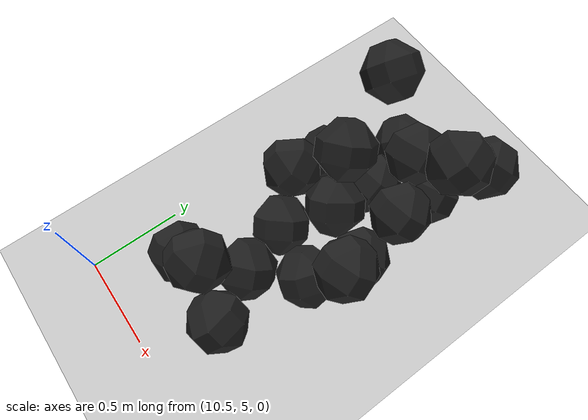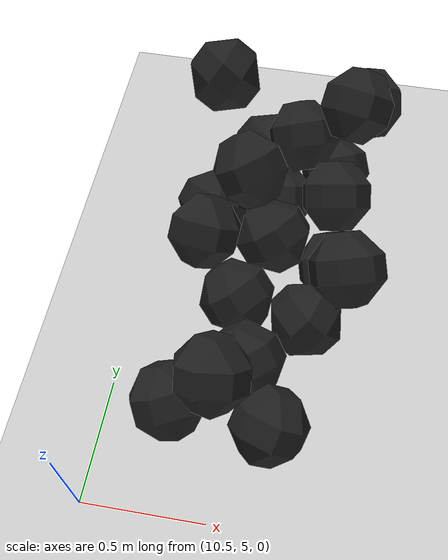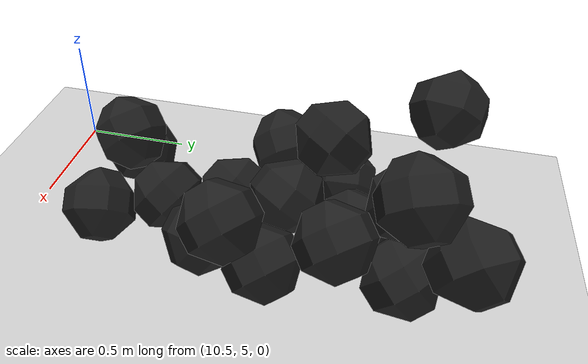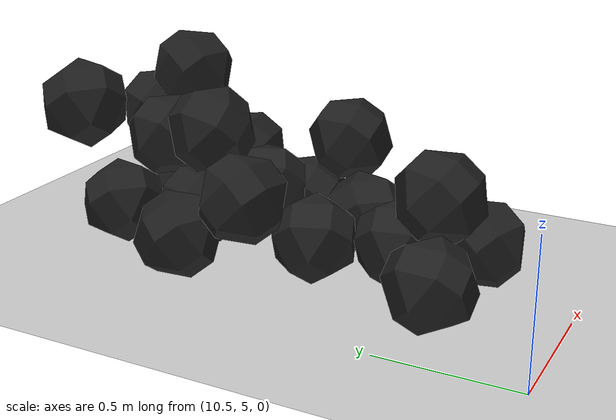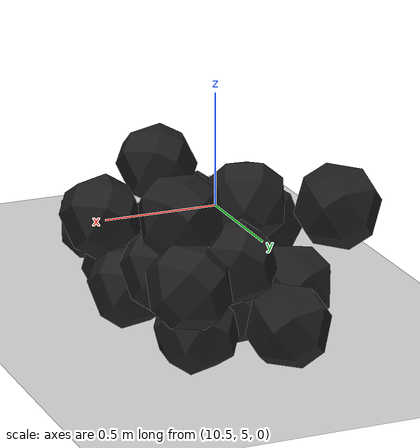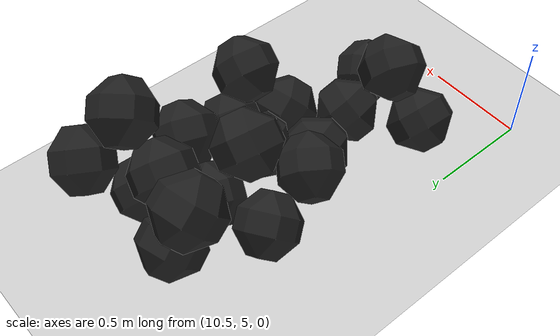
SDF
<sdf version="1.7">
 <world name="default">
  <model name="ground_plane">
   <static>1</static>
   <link name="link">
    <collision name="collision">
     <geometry><plane><normal>0 0 1</normal><size>100 100</size></plane></geometry>
     <surface><friction><ode><mu>100</mu><mu2>50</mu2></ode></friction></surface>
    </collision>
    <visual name="visual">
     <cast_shadows>0</cast_shadows>
     <geometry><plane><normal>0 0 1</normal><size>100 100</size></plane></geometry>
     <material>
      <script><uri>file://media/materials/scripts/gazebo.material</uri><name>Gazebo/Grey</name></script>
     </material>
    </visual>
   </link>
  </model>
  <model name="haoduomiantiaa_6">
   <link name="link_0">
    <inertial>
     <mass>0.2</mass>
     <inertia>
      <ixx>0.166667</ixx>
      <ixy>0</ixy>
      <ixz>0</ixz>
      <iyy>0.166667</iyy>
      <iyz>0</iyz>
      <izz>0.166667</izz>
     </inertia>
    </inertial>
    <visual name="visual">
     <geometry>
      <mesh>
       <uri>/home/lihaoyang/catkin_ws/src/pudong_gazebo/world/stl/haoduomianti.stl</uri>
       <scale>1 1 1</scale>
      </mesh>
     </geometry>
     <material>
      <lighting>1</lighting>
      <script><uri>file://media/materials/scripts/gazebo.material</uri><name>Gazebo/Black</name></script>
      <shader type="pixel"><normal_map>__default__</normal_map></shader>
      <ambient>0.3 0.3 0.3 1</ambient>
      <diffuse>0.7 0.7 0.7 1</diffuse>
      <specular>0.01 0.01 0.01 1</specular>
      <emissive>0 0 0 1</emissive>
     </material>
    </visual>
    <collision name="collision">
     <geometry>
      <mesh>
       <uri>/home/lihaoyang/catkin_ws/src/pudong_gazebo/world/stl/haoduomianti.stl</uri>
       <scale>1 1 1</scale>
      </mesh>
     </geometry>
     <surface>
      <friction>
       <ode><mu>1</mu><mu2>1</mu2><fdir1>0 0 0</fdir1><slip1>0</slip1><slip2>0</slip2></ode>
       <torsional>
        <coefficient>1</coefficient>
        <patch_radius>0</patch_radius>
        <surface_radius>0</surface_radius>
        <use_patch_radius>1</use_patch_radius>
        <ode><slip>0</slip></ode>
       </torsional>
      </friction>
      <bounce><restitution_coefficient>0</restitution_coefficient><threshold>1e+06</threshold></bounce>
      <contact>
       <collide_without_contact>0</collide_without_contact>
       <collide_without_contact_bitmask>1</collide_without_contact_bitmask>
       <collide_bitmask>1</collide_bitmask>
       <ode>
        <soft_cfm>0</soft_cfm>
        <soft_erp>0.2</soft_erp>
        <kp>1e+13</kp>
        <kd>1</kd>
        <max_vel>0.01</max_vel>
        <min_depth>0</min_depth>
       </ode>
       <bullet>
        <split_impulse>1</split_impulse>
        <split_impulse_penetration_threshold>-0.01</split_impulse_penetration_threshold>
        <soft_cfm>0</soft_cfm>
        <soft_erp>0.2</soft_erp>
        <kp>1e+13</kp>
        <kd>1</kd>
       </bullet>
      </contact>
     </surface>
    </collision>
   </link>
   <static>0</static>
   <pose>10.7572 6.37265 -0.11553 0.78544 -0.615415 -0.980964</pose>
  </model>
  <model name="haoduomiantiaa_12">
   <link name="link_0">
    <inertial>
     <mass>0.2</mass>
     <inertia>
      <ixx>0.166667</ixx>
      <ixy>0</ixy>
      <ixz>0</ixz>
      <iyy>0.166667</iyy>
      <iyz>0</iyz>
      <izz>0.166667</izz>
     </inertia>
    </inertial>
    <visual name="visual">
     <geometry>
      <mesh>
       <uri>/home/lihaoyang/catkin_ws/src/pudong_gazebo/world/stl/haoduomianti.stl</uri>
       <scale>1 1 1</scale>
      </mesh>
     </geometry>
     <material>
      <lighting>1</lighting>
      <script><uri>file://media/materials/scripts/gazebo.material</uri><name>Gazebo/Black</name></script>
      <shader type="pixel"><normal_map>__default__</normal_map></shader>
      <ambient>0.3 0.3 0.3 1</ambient>
      <diffuse>0.7 0.7 0.7 1</diffuse>
      <specular>0.01 0.01 0.01 1</specular>
      <emissive>0 0 0 1</emissive>
     </material>
    </visual>
    <collision name="collision">
     <geometry>
      <mesh>
       <uri>/home/lihaoyang/catkin_ws/src/pudong_gazebo/world/stl/haoduomianti.stl</uri>
       <scale>1 1 1</scale>
      </mesh>
     </geometry>
     <surface>
      <friction>
       <ode><mu>1</mu><mu2>1</mu2><fdir1>0 0 0</fdir1><slip1>0</slip1><slip2>0</slip2></ode>
       <torsional>
        <coefficient>1</coefficient>
        <patch_radius>0</patch_radius>
        <surface_radius>0</surface_radius>
        <use_patch_radius>1</use_patch_radius>
        <ode><slip>0</slip></ode>
       </torsional>
      </friction>
      <bounce><restitution_coefficient>0</restitution_coefficient><threshold>1e+06</threshold></bounce>
      <contact>
       <collide_without_contact>0</collide_without_contact>
       <collide_without_contact_bitmask>1</collide_without_contact_bitmask>
       <collide_bitmask>1</collide_bitmask>
       <ode>
        <soft_cfm>0</soft_cfm>
        <soft_erp>0.2</soft_erp>
        <kp>1e+13</kp>
        <kd>1</kd>
        <max_vel>0.01</max_vel>
        <min_depth>0</min_depth>
       </ode>
       <bullet>
        <split_impulse>1</split_impulse>
        <split_impulse_penetration_threshold>-0.01</split_impulse_penetration_threshold>
        <soft_cfm>0</soft_cfm>
        <soft_erp>0.2</soft_erp>
        <kp>1e+13</kp>
        <kd>1</kd>
       </bullet>
      </contact>
     </surface>
    </collision>
   </link>
   <static>0</static>
   <pose>10.9467 6.75454 -0.115612 0.785449 -0.615429 -1.28802</pose>
  </model>
  <model name="haoduomiantiaa_19">
   <link name="link_0">
    <inertial>
     <mass>0.2</mass>
     <inertia>
      <ixx>0.166667</ixx>
      <ixy>0</ixy>
      <ixz>0</ixz>
      <iyy>0.166667</iyy>
      <iyz>0</iyz>
      <izz>0.166667</izz>
     </inertia>
    </inertial>
    <visual name="visual">
     <geometry>
      <mesh>
       <uri>/home/lihaoyang/catkin_ws/src/pudong_gazebo/world/stl/haoduomianti.stl</uri>
       <scale>1 1 1</scale>
      </mesh>
     </geometry>
     <material>
      <lighting>1</lighting>
      <script><uri>file://media/materials/scripts/gazebo.material</uri><name>Gazebo/Black</name></script>
      <shader type="pixel"><normal_map>__default__</normal_map></shader>
      <ambient>0.3 0.3 0.3 1</ambient>
      <diffuse>0.7 0.7 0.7 1</diffuse>
      <specular>0.01 0.01 0.01 1</specular>
      <emissive>0 0 0 1</emissive>
     </material>
    </visual>
    <collision name="collision">
     <geometry>
      <mesh>
       <uri>/home/lihaoyang/catkin_ws/src/pudong_gazebo/world/stl/haoduomianti.stl</uri>
       <scale>1 1 1</scale>
      </mesh>
     </geometry>
     <surface>
      <friction>
       <ode><mu>1</mu><mu2>1</mu2><fdir1>0 0 0</fdir1><slip1>0</slip1><slip2>0</slip2></ode>
       <torsional>
        <coefficient>1</coefficient>
        <patch_radius>0</patch_radius>
        <surface_radius>0</surface_radius>
        <use_patch_radius>1</use_patch_radius>
        <ode><slip>0</slip></ode>
       </torsional>
      </friction>
      <bounce><restitution_coefficient>0</restitution_coefficient><threshold>1e+06</threshold></bounce>
      <contact>
       <collide_without_contact>0</collide_without_contact>
       <collide_without_contact_bitmask>1</collide_without_contact_bitmask>
       <collide_bitmask>1</collide_bitmask>
       <ode>
        <soft_cfm>0</soft_cfm>
        <soft_erp>0.2</soft_erp>
        <kp>1e+13</kp>
        <kd>1</kd>
        <max_vel>0.01</max_vel>
        <min_depth>0</min_depth>
       </ode>
       <bullet>
        <split_impulse>1</split_impulse>
        <split_impulse_penetration_threshold>-0.01</split_impulse_penetration_threshold>
        <soft_cfm>0</soft_cfm>
        <soft_erp>0.2</soft_erp>
        <kp>1e+13</kp>
        <kd>1</kd>
       </bullet>
      </contact>
     </surface>
    </collision>
   </link>
   <static>0</static>
   <pose>11.2546 5.85931 -0.115493 0.785344 -0.615491 -1.36925</pose>
  </model>
  <model name="haoduomiantiaa_26">
   <link name="link_0">
    <inertial>
     <mass>0.2</mass>
     <inertia>
      <ixx>0.166667</ixx>
      <ixy>0</ixy>
      <ixz>0</ixz>
      <iyy>0.166667</iyy>
      <iyz>0</iyz>
      <izz>0.166667</izz>
     </inertia>
    </inertial>
    <visual name="visual">
     <geometry>
      <mesh>
       <uri>/home/lihaoyang/catkin_ws/src/pudong_gazebo/world/stl/haoduomianti.stl</uri>
       <scale>1 1 1</scale>
      </mesh>
     </geometry>
     <material>
      <lighting>1</lighting>
      <script><uri>file://media/materials/scripts/gazebo.material</uri><name>Gazebo/Black</name></script>
      <shader type="pixel"><normal_map>__default__</normal_map></shader>
      <ambient>0.3 0.3 0.3 1</ambient>
      <diffuse>0.7 0.7 0.7 1</diffuse>
      <specular>0.01 0.01 0.01 1</specular>
      <emissive>0 0 0 1</emissive>
     </material>
    </visual>
    <collision name="collision">
     <geometry>
      <mesh>
       <uri>/home/lihaoyang/catkin_ws/src/pudong_gazebo/world/stl/haoduomianti.stl</uri>
       <scale>1 1 1</scale>
      </mesh>
     </geometry>
     <surface>
      <friction>
       <ode><mu>1</mu><mu2>1</mu2><fdir1>0 0 0</fdir1><slip1>0</slip1><slip2>0</slip2></ode>
       <torsional>
        <coefficient>1</coefficient>
        <patch_radius>0</patch_radius>
        <surface_radius>0</surface_radius>
        <use_patch_radius>1</use_patch_radius>
        <ode><slip>0</slip></ode>
       </torsional>
      </friction>
      <bounce><restitution_coefficient>0</restitution_coefficient><threshold>1e+06</threshold></bounce>
      <contact>
       <collide_without_contact>0</collide_without_contact>
       <collide_without_contact_bitmask>1</collide_without_contact_bitmask>
       <collide_bitmask>1</collide_bitmask>
       <ode>
        <soft_cfm>0</soft_cfm>
        <soft_erp>0.2</soft_erp>
        <kp>1e+13</kp>
        <kd>1</kd>
        <max_vel>0.01</max_vel>
        <min_depth>0</min_depth>
       </ode>
       <bullet>
        <split_impulse>1</split_impulse>
        <split_impulse_penetration_threshold>-0.01</split_impulse_penetration_threshold>
        <soft_cfm>0</soft_cfm>
        <soft_erp>0.2</soft_erp>
        <kp>1e+13</kp>
        <kd>1</kd>
       </bullet>
      </contact>
     </surface>
    </collision>
   </link>
   <static>0</static>
   <pose>11.3364 6.13621 -0.115843 0.7854 -0.615567 1.87062</pose>
  </model>
  <model name="haoduomiantiaa_32">
   <link name="link_0">
    <inertial>
     <mass>0.2</mass>
     <inertia>
      <ixx>0.166667</ixx>
      <ixy>0</ixy>
      <ixz>0</ixz>
      <iyy>0.166667</iyy>
      <iyz>0</iyz>
      <izz>0.166667</izz>
     </inertia>
    </inertial>
    <visual name="visual">
     <geometry>
      <mesh>
       <uri>/home/lihaoyang/catkin_ws/src/pudong_gazebo/world/stl/haoduomianti.stl</uri>
       <scale>1 1 1</scale>
      </mesh>
     </geometry>
     <material>
      <lighting>1</lighting>
      <script><uri>file://media/materials/scripts/gazebo.material</uri><name>Gazebo/Black</name></script>
      <shader type="pixel"><normal_map>__default__</normal_map></shader>
      <ambient>0.3 0.3 0.3 1</ambient>
      <diffuse>0.7 0.7 0.7 1</diffuse>
      <specular>0.01 0.01 0.01 1</specular>
      <emissive>0 0 0 1</emissive>
     </material>
    </visual>
    <collision name="collision">
     <geometry>
      <mesh>
       <uri>/home/lihaoyang/catkin_ws/src/pudong_gazebo/world/stl/haoduomianti.stl</uri>
       <scale>1 1 1</scale>
      </mesh>
     </geometry>
     <surface>
      <friction>
       <ode><mu>1</mu><mu2>1</mu2><fdir1>0 0 0</fdir1><slip1>0</slip1><slip2>0</slip2></ode>
       <torsional>
        <coefficient>1</coefficient>
        <patch_radius>0</patch_radius>
        <surface_radius>0</surface_radius>
        <use_patch_radius>1</use_patch_radius>
        <ode><slip>0</slip></ode>
       </torsional>
      </friction>
      <bounce><restitution_coefficient>0</restitution_coefficient><threshold>1e+06</threshold></bounce>
      <contact>
       <collide_without_contact>0</collide_without_contact>
       <collide_without_contact_bitmask>1</collide_without_contact_bitmask>
       <collide_bitmask>1</collide_bitmask>
       <ode>
        <soft_cfm>0</soft_cfm>
        <soft_erp>0.2</soft_erp>
        <kp>1e+13</kp>
        <kd>1</kd>
        <max_vel>0.01</max_vel>
        <min_depth>0</min_depth>
       </ode>
       <bullet>
        <split_impulse>1</split_impulse>
        <split_impulse_penetration_threshold>-0.01</split_impulse_penetration_threshold>
        <soft_cfm>0</soft_cfm>
        <soft_erp>0.2</soft_erp>
        <kp>1e+13</kp>
        <kd>1</kd>
       </bullet>
      </contact>
     </surface>
    </collision>
   </link>
   <static>0</static>
   <pose>11.2795 6.66926 -0.115498 0.785385 -0.61551 -0.119163</pose>
  </model>
  <model name="haoduomiantiaa_43">
   <link name="link_0">
    <inertial>
     <mass>0.2</mass>
     <inertia>
      <ixx>0.166667</ixx>
      <ixy>0</ixy>
      <ixz>0</ixz>
      <iyy>0.166667</iyy>
      <iyz>0</iyz>
      <izz>0.166667</izz>
     </inertia>
    </inertial>
    <visual name="visual">
     <geometry>
      <mesh>
       <uri>/home/lihaoyang/catkin_ws/src/pudong_gazebo/world/stl/haoduomianti.stl</uri>
       <scale>1 1 1</scale>
      </mesh>
     </geometry>
     <material>
      <lighting>1</lighting>
      <script><uri>file://media/materials/scripts/gazebo.material</uri><name>Gazebo/Black</name></script>
      <shader type="pixel"><normal_map>__default__</normal_map></shader>
      <ambient>0.3 0.3 0.3 1</ambient>
      <diffuse>0.7 0.7 0.7 1</diffuse>
      <specular>0.01 0.01 0.01 1</specular>
      <emissive>0 0 0 1</emissive>
     </material>
    </visual>
    <collision name="collision">
     <geometry>
      <mesh>
       <uri>/home/lihaoyang/catkin_ws/src/pudong_gazebo/world/stl/haoduomianti.stl</uri>
       <scale>1 1 1</scale>
      </mesh>
     </geometry>
     <surface>
      <friction>
       <ode><mu>1</mu><mu2>1</mu2><fdir1>0 0 0</fdir1><slip1>0</slip1><slip2>0</slip2></ode>
       <torsional>
        <coefficient>1</coefficient>
        <patch_radius>0</patch_radius>
        <surface_radius>0</surface_radius>
        <use_patch_radius>1</use_patch_radius>
        <ode><slip>0</slip></ode>
       </torsional>
      </friction>
      <bounce><restitution_coefficient>0</restitution_coefficient><threshold>1e+06</threshold></bounce>
      <contact>
       <collide_without_contact>0</collide_without_contact>
       <collide_without_contact_bitmask>1</collide_without_contact_bitmask>
       <collide_bitmask>1</collide_bitmask>
       <ode>
        <soft_cfm>0</soft_cfm>
        <soft_erp>0.2</soft_erp>
        <kp>1e+13</kp>
        <kd>1</kd>
        <max_vel>0.01</max_vel>
        <min_depth>0</min_depth>
       </ode>
       <bullet>
        <split_impulse>1</split_impulse>
        <split_impulse_penetration_threshold>-0.01</split_impulse_penetration_threshold>
        <soft_cfm>0</soft_cfm>
        <soft_erp>0.2</soft_erp>
        <kp>1e+13</kp>
        <kd>1</kd>
       </bullet>
      </contact>
     </surface>
    </collision>
   </link>
   <static>0</static>
   <pose>10.95 5.92039 -0.115473 0.785589 -0.615569 0.338435</pose>
  </model>
  <model name="haoduomiantiaa_46">
   <link name="link_0">
    <inertial>
     <mass>0.2</mass>
     <inertia>
      <ixx>0.166667</ixx>
      <ixy>0</ixy>
      <ixz>0</ixz>
      <iyy>0.166667</iyy>
      <iyz>0</iyz>
      <izz>0.166667</izz>
     </inertia>
    </inertial>
    <visual name="visual">
     <geometry>
      <mesh>
       <uri>/home/lihaoyang/catkin_ws/src/pudong_gazebo/world/stl/haoduomianti.stl</uri>
       <scale>1 1 1</scale>
      </mesh>
     </geometry>
     <material>
      <lighting>1</lighting>
      <script><uri>file://media/materials/scripts/gazebo.material</uri><name>Gazebo/Black</name></script>
      <shader type="pixel"><normal_map>__default__</normal_map></shader>
      <ambient>0.3 0.3 0.3 1</ambient>
      <diffuse>0.7 0.7 0.7 1</diffuse>
      <specular>0.01 0.01 0.01 1</specular>
      <emissive>0 0 0 1</emissive>
     </material>
    </visual>
    <collision name="collision">
     <geometry>
      <mesh>
       <uri>/home/lihaoyang/catkin_ws/src/pudong_gazebo/world/stl/haoduomianti.stl</uri>
       <scale>1 1 1</scale>
      </mesh>
     </geometry>
     <surface>
      <friction>
       <ode><mu>1</mu><mu2>1</mu2><fdir1>0 0 0</fdir1><slip1>0</slip1><slip2>0</slip2></ode>
       <torsional>
        <coefficient>1</coefficient>
        <patch_radius>0</patch_radius>
        <surface_radius>0</surface_radius>
        <use_patch_radius>1</use_patch_radius>
        <ode><slip>0</slip></ode>
       </torsional>
      </friction>
      <bounce><restitution_coefficient>0</restitution_coefficient><threshold>1e+06</threshold></bounce>
      <contact>
       <collide_without_contact>0</collide_without_contact>
       <collide_without_contact_bitmask>1</collide_without_contact_bitmask>
       <collide_bitmask>1</collide_bitmask>
       <ode>
        <soft_cfm>0</soft_cfm>
        <soft_erp>0.2</soft_erp>
        <kp>1e+13</kp>
        <kd>1</kd>
        <max_vel>0.01</max_vel>
        <min_depth>0</min_depth>
       </ode>
       <bullet>
        <split_impulse>1</split_impulse>
        <split_impulse_penetration_threshold>-0.01</split_impulse_penetration_threshold>
        <soft_cfm>0</soft_cfm>
        <soft_erp>0.2</soft_erp>
        <kp>1e+13</kp>
        <kd>1</kd>
       </bullet>
      </contact>
     </surface>
    </collision>
   </link>
   <static>0</static>
   <pose>11.0478 6.46177 -0.115489 0.785397 -0.615451 -0.390259</pose>
  </model>
  <model name="haoduomiantiaa_59">
   <link name="link_0">
    <inertial>
     <mass>0.2</mass>
     <inertia>
      <ixx>0.166667</ixx>
      <ixy>0</ixy>
      <ixz>0</ixz>
      <iyy>0.166667</iyy>
      <iyz>0</iyz>
      <izz>0.166667</izz>
     </inertia>
    </inertial>
    <visual name="visual">
     <geometry>
      <mesh>
       <uri>/home/lihaoyang/catkin_ws/src/pudong_gazebo/world/stl/haoduomianti.stl</uri>
       <scale>1 1 1</scale>
      </mesh>
     </geometry>
     <material>
      <lighting>1</lighting>
      <script><uri>file://media/materials/scripts/gazebo.material</uri><name>Gazebo/Black</name></script>
      <shader type="pixel"><normal_map>__default__</normal_map></shader>
      <ambient>0.3 0.3 0.3 1</ambient>
      <diffuse>0.7 0.7 0.7 1</diffuse>
      <specular>0.01 0.01 0.01 1</specular>
      <emissive>0 0 0 1</emissive>
     </material>
    </visual>
    <collision name="collision">
     <geometry>
      <mesh>
       <uri>/home/lihaoyang/catkin_ws/src/pudong_gazebo/world/stl/haoduomianti.stl</uri>
       <scale>1 1 1</scale>
      </mesh>
     </geometry>
     <surface>
      <friction>
       <ode><mu>1</mu><mu2>1</mu2><fdir1>0 0 0</fdir1><slip1>0</slip1><slip2>0</slip2></ode>
       <torsional>
        <coefficient>1</coefficient>
        <patch_radius>0</patch_radius>
        <surface_radius>0</surface_radius>
        <use_patch_radius>1</use_patch_radius>
        <ode><slip>0</slip></ode>
       </torsional>
      </friction>
      <bounce><restitution_coefficient>0</restitution_coefficient><threshold>1e+06</threshold></bounce>
      <contact>
       <collide_without_contact>0</collide_without_contact>
       <collide_without_contact_bitmask>1</collide_without_contact_bitmask>
       <collide_bitmask>1</collide_bitmask>
       <ode>
        <soft_cfm>0</soft_cfm>
        <soft_erp>0.2</soft_erp>
        <kp>1e+13</kp>
        <kd>1</kd>
        <max_vel>0.01</max_vel>
        <min_depth>0</min_depth>
       </ode>
       <bullet>
        <split_impulse>1</split_impulse>
        <split_impulse_penetration_threshold>-0.01</split_impulse_penetration_threshold>
        <soft_cfm>0</soft_cfm>
        <soft_erp>0.2</soft_erp>
        <kp>1e+13</kp>
        <kd>1</kd>
       </bullet>
      </contact>
     </surface>
    </collision>
   </link>
   <static>0</static>
   <pose>11.3012 6.41184 0.03725 0.814572 -0.591058 -0.361174</pose>
  </model>
  <model name="haoduomiantiaa_69">
   <link name="link_0">
    <inertial>
     <mass>0.2</mass>
     <inertia>
      <ixx>0.166667</ixx>
      <ixy>0</ixy>
      <ixz>0</ixz>
      <iyy>0.166667</iyy>
      <iyz>0</iyz>
      <izz>0.166667</izz>
     </inertia>
    </inertial>
    <visual name="visual">
     <geometry>
      <mesh>
       <uri>/home/lihaoyang/catkin_ws/src/pudong_gazebo/world/stl/haoduomianti.stl</uri>
       <scale>1 1 1</scale>
      </mesh>
     </geometry>
     <material>
      <lighting>1</lighting>
      <script><uri>file://media/materials/scripts/gazebo.material</uri><name>Gazebo/Black</name></script>
      <shader type="pixel"><normal_map>__default__</normal_map></shader>
      <ambient>0.3 0.3 0.3 1</ambient>
      <diffuse>0.7 0.7 0.7 1</diffuse>
      <specular>0.01 0.01 0.01 1</specular>
      <emissive>0 0 0 1</emissive>
     </material>
    </visual>
    <collision name="collision">
     <geometry>
      <mesh>
       <uri>/home/lihaoyang/catkin_ws/src/pudong_gazebo/world/stl/haoduomianti.stl</uri>
       <scale>1 1 1</scale>
      </mesh>
     </geometry>
     <surface>
      <friction>
       <ode><mu>1</mu><mu2>1</mu2><fdir1>0 0 0</fdir1><slip1>0</slip1><slip2>0</slip2></ode>
       <torsional>
        <coefficient>1</coefficient>
        <patch_radius>0</patch_radius>
        <surface_radius>0</surface_radius>
        <use_patch_radius>1</use_patch_radius>
        <ode><slip>0</slip></ode>
       </torsional>
      </friction>
      <bounce><restitution_coefficient>0</restitution_coefficient><threshold>1e+06</threshold></bounce>
      <contact>
       <collide_without_contact>0</collide_without_contact>
       <collide_without_contact_bitmask>1</collide_without_contact_bitmask>
       <collide_bitmask>1</collide_bitmask>
       <ode>
        <soft_cfm>0</soft_cfm>
        <soft_erp>0.2</soft_erp>
        <kp>1e+13</kp>
        <kd>1</kd>
        <max_vel>0.01</max_vel>
        <min_depth>0</min_depth>
       </ode>
       <bullet>
        <split_impulse>1</split_impulse>
        <split_impulse_penetration_threshold>-0.01</split_impulse_penetration_threshold>
        <soft_cfm>0</soft_cfm>
        <soft_erp>0.2</soft_erp>
        <kp>1e+13</kp>
        <kd>1</kd>
       </bullet>
      </contact>
     </surface>
    </collision>
   </link>
   <static>0</static>
   <pose>10.7682 5.41253 -0.115364 0.788121 -0.616741 -0.054149</pose>
  </model>
  <model name="haoduomiantiaa_73">
   <link name="link_0">
    <inertial>
     <mass>0.2</mass>
     <inertia>
      <ixx>0.166667</ixx>
      <ixy>0</ixy>
      <ixz>0</ixz>
      <iyy>0.166667</iyy>
      <iyz>0</iyz>
      <izz>0.166667</izz>
     </inertia>
    </inertial>
    <visual name="visual">
     <geometry>
      <mesh>
       <uri>/home/lihaoyang/catkin_ws/src/pudong_gazebo/world/stl/haoduomianti.stl</uri>
       <scale>1 1 1</scale>
      </mesh>
     </geometry>
     <material>
      <lighting>1</lighting>
      <script><uri>file://media/materials/scripts/gazebo.material</uri><name>Gazebo/Black</name></script>
      <shader type="pixel"><normal_map>__default__</normal_map></shader>
      <ambient>0.3 0.3 0.3 1</ambient>
      <diffuse>0.7 0.7 0.7 1</diffuse>
      <specular>0.01 0.01 0.01 1</specular>
      <emissive>0 0 0 1</emissive>
     </material>
    </visual>
    <collision name="collision">
     <geometry>
      <mesh>
       <uri>/home/lihaoyang/catkin_ws/src/pudong_gazebo/world/stl/haoduomianti.stl</uri>
       <scale>1 1 1</scale>
      </mesh>
     </geometry>
     <surface>
      <friction>
       <ode><mu>1</mu><mu2>1</mu2><fdir1>0 0 0</fdir1><slip1>0</slip1><slip2>0</slip2></ode>
       <torsional>
        <coefficient>1</coefficient>
        <patch_radius>0</patch_radius>
        <surface_radius>0</surface_radius>
        <use_patch_radius>1</use_patch_radius>
        <ode><slip>0</slip></ode>
       </torsional>
      </friction>
      <bounce><restitution_coefficient>0</restitution_coefficient><threshold>1e+06</threshold></bounce>
      <contact>
       <collide_without_contact>0</collide_without_contact>
       <collide_without_contact_bitmask>1</collide_without_contact_bitmask>
       <collide_bitmask>1</collide_bitmask>
       <ode>
        <soft_cfm>0</soft_cfm>
        <soft_erp>0.2</soft_erp>
        <kp>1e+13</kp>
        <kd>1</kd>
        <max_vel>0.01</max_vel>
        <min_depth>0</min_depth>
       </ode>
       <bullet>
        <split_impulse>1</split_impulse>
        <split_impulse_penetration_threshold>-0.01</split_impulse_penetration_threshold>
        <soft_cfm>0</soft_cfm>
        <soft_erp>0.2</soft_erp>
        <kp>1e+13</kp>
        <kd>1</kd>
       </bullet>
      </contact>
     </surface>
    </collision>
   </link>
   <static>0</static>
   <pose>11.1818 5.37661 -0.115509 0.7854 -0.61548 -2.94281</pose>
  </model>
  <model name="haoduomiantiaa_92">
   <link name="link_0">
    <inertial>
     <mass>0.2</mass>
     <inertia>
      <ixx>0.166667</ixx>
      <ixy>0</ixy>
      <ixz>0</ixz>
      <iyy>0.166667</iyy>
      <iyz>0</iyz>
      <izz>0.166667</izz>
     </inertia>
    </inertial>
    <visual name="visual">
     <geometry>
      <mesh>
       <uri>/home/lihaoyang/catkin_ws/src/pudong_gazebo/world/stl/haoduomianti.stl</uri>
       <scale>1 1 1</scale>
      </mesh>
     </geometry>
     <material>
      <lighting>1</lighting>
      <script><uri>file://media/materials/scripts/gazebo.material</uri><name>Gazebo/Black</name></script>
      <shader type="pixel"><normal_map>__default__</normal_map></shader>
      <ambient>0.3 0.3 0.3 1</ambient>
      <diffuse>0.7 0.7 0.7 1</diffuse>
      <specular>0.01 0.01 0.01 1</specular>
      <emissive>0 0 0 1</emissive>
     </material>
    </visual>
    <collision name="collision">
     <geometry>
      <mesh>
       <uri>/home/lihaoyang/catkin_ws/src/pudong_gazebo/world/stl/haoduomianti.stl</uri>
       <scale>1 1 1</scale>
      </mesh>
     </geometry>
     <surface>
      <friction>
       <ode><mu>1</mu><mu2>1</mu2><fdir1>0 0 0</fdir1><slip1>0</slip1><slip2>0</slip2></ode>
       <torsional>
        <coefficient>1</coefficient>
        <patch_radius>0</patch_radius>
        <surface_radius>0</surface_radius>
        <use_patch_radius>1</use_patch_radius>
        <ode><slip>0</slip></ode>
       </torsional>
      </friction>
      <bounce><restitution_coefficient>0</restitution_coefficient><threshold>1e+06</threshold></bounce>
      <contact>
       <collide_without_contact>0</collide_without_contact>
       <collide_without_contact_bitmask>1</collide_without_contact_bitmask>
       <collide_bitmask>1</collide_bitmask>
       <ode>
        <soft_cfm>0</soft_cfm>
        <soft_erp>0.2</soft_erp>
        <kp>1e+13</kp>
        <kd>1</kd>
        <max_vel>0.01</max_vel>
        <min_depth>0</min_depth>
       </ode>
       <bullet>
        <split_impulse>1</split_impulse>
        <split_impulse_penetration_threshold>-0.01</split_impulse_penetration_threshold>
        <soft_cfm>0</soft_cfm>
        <soft_erp>0.2</soft_erp>
        <kp>1e+13</kp>
        <kd>1</kd>
       </bullet>
      </contact>
     </surface>
    </collision>
   </link>
   <static>0</static>
   <pose>11.0248 6.15825 0.006487 0.791826 -0.449857 0.47462</pose>
  </model>
  <model name="haoduomiantiaa_97">
   <link name="link_0">
    <inertial>
     <mass>0.2</mass>
     <inertia>
      <ixx>0.166667</ixx>
      <ixy>0</ixy>
      <ixz>0</ixz>
      <iyy>0.166667</iyy>
      <iyz>0</iyz>
      <izz>0.166667</izz>
     </inertia>
    </inertial>
    <visual name="visual">
     <geometry>
      <mesh>
       <uri>/home/lihaoyang/catkin_ws/src/pudong_gazebo/world/stl/haoduomianti.stl</uri>
       <scale>1 1 1</scale>
      </mesh>
     </geometry>
     <material>
      <lighting>1</lighting>
      <script><uri>file://media/materials/scripts/gazebo.material</uri><name>Gazebo/Black</name></script>
      <shader type="pixel"><normal_map>__default__</normal_map></shader>
      <ambient>0.3 0.3 0.3 1</ambient>
      <diffuse>0.7 0.7 0.7 1</diffuse>
      <specular>0.01 0.01 0.01 1</specular>
      <emissive>0 0 0 1</emissive>
     </material>
    </visual>
    <collision name="collision">
     <geometry>
      <mesh>
       <uri>/home/lihaoyang/catkin_ws/src/pudong_gazebo/world/stl/haoduomianti.stl</uri>
       <scale>1 1 1</scale>
      </mesh>
     </geometry>
     <surface>
      <friction>
       <ode><mu>1</mu><mu2>1</mu2><fdir1>0 0 0</fdir1><slip1>0</slip1><slip2>0</slip2></ode>
       <torsional>
        <coefficient>1</coefficient>
        <patch_radius>0</patch_radius>
        <surface_radius>0</surface_radius>
        <use_patch_radius>1</use_patch_radius>
        <ode><slip>0</slip></ode>
       </torsional>
      </friction>
      <bounce><restitution_coefficient>0</restitution_coefficient><threshold>1e+06</threshold></bounce>
      <contact>
       <collide_without_contact>0</collide_without_contact>
       <collide_without_contact_bitmask>1</collide_without_contact_bitmask>
       <collide_bitmask>1</collide_bitmask>
       <ode>
        <soft_cfm>0</soft_cfm>
        <soft_erp>0.2</soft_erp>
        <kp>1e+13</kp>
        <kd>1</kd>
        <max_vel>0.01</max_vel>
        <min_depth>0</min_depth>
       </ode>
       <bullet>
        <split_impulse>1</split_impulse>
        <split_impulse_penetration_threshold>-0.01</split_impulse_penetration_threshold>
        <soft_cfm>0</soft_cfm>
        <soft_erp>0.2</soft_erp>
        <kp>1e+13</kp>
        <kd>1</kd>
       </bullet>
      </contact>
     </surface>
    </collision>
   </link>
   <static>0</static>
   <pose>11.123 6.6595 0.121778 0.754785 -0.5743 -2.26465</pose>
  </model>
  <model name="haoduomiantiaa_100">
   <link name="link_0">
    <inertial>
     <mass>0.2</mass>
     <inertia>
      <ixx>0.166667</ixx>
      <ixy>0</ixy>
      <ixz>0</ixz>
      <iyy>0.166667</iyy>
      <iyz>0</iyz>
      <izz>0.166667</izz>
     </inertia>
    </inertial>
    <visual name="visual">
     <geometry>
      <mesh>
       <uri>/home/lihaoyang/catkin_ws/src/pudong_gazebo/world/stl/haoduomianti.stl</uri>
       <scale>1 1 1</scale>
      </mesh>
     </geometry>
     <material>
      <lighting>1</lighting>
      <script><uri>file://media/materials/scripts/gazebo.material</uri><name>Gazebo/Black</name></script>
      <shader type="pixel"><normal_map>__default__</normal_map></shader>
      <ambient>0.3 0.3 0.3 1</ambient>
      <diffuse>0.7 0.7 0.7 1</diffuse>
      <specular>0.01 0.01 0.01 1</specular>
      <emissive>0 0 0 1</emissive>
     </material>
    </visual>
    <collision name="collision">
     <geometry>
      <mesh>
       <uri>/home/lihaoyang/catkin_ws/src/pudong_gazebo/world/stl/haoduomianti.stl</uri>
       <scale>1 1 1</scale>
      </mesh>
     </geometry>
     <surface>
      <friction>
       <ode><mu>1</mu><mu2>1</mu2><fdir1>0 0 0</fdir1><slip1>0</slip1><slip2>0</slip2></ode>
       <torsional>
        <coefficient>1</coefficient>
        <patch_radius>0</patch_radius>
        <surface_radius>0</surface_radius>
        <use_patch_radius>1</use_patch_radius>
        <ode><slip>0</slip></ode>
       </torsional>
      </friction>
      <bounce><restitution_coefficient>0</restitution_coefficient><threshold>1e+06</threshold></bounce>
      <contact>
       <collide_without_contact>0</collide_without_contact>
       <collide_without_contact_bitmask>1</collide_without_contact_bitmask>
       <collide_bitmask>1</collide_bitmask>
       <ode>
        <soft_cfm>0</soft_cfm>
        <soft_erp>0.2</soft_erp>
        <kp>1e+13</kp>
        <kd>1</kd>
        <max_vel>0.01</max_vel>
        <min_depth>0</min_depth>
       </ode>
       <bullet>
        <split_impulse>1</split_impulse>
        <split_impulse_penetration_threshold>-0.01</split_impulse_penetration_threshold>
        <soft_cfm>0</soft_cfm>
        <soft_erp>0.2</soft_erp>
        <kp>1e+13</kp>
        <kd>1</kd>
       </bullet>
      </contact>
     </surface>
    </collision>
   </link>
   <static>0</static>
   <pose>11.438 6.88274 0.143947 0.945857 -0.753164 -0.558558</pose>
  </model>
  <model name="haoduomiantiaa_109">
   <link name="link_0">
    <inertial>
     <mass>0.2</mass>
     <inertia>
      <ixx>0.166667</ixx>
      <ixy>0</ixy>
      <ixz>0</ixz>
      <iyy>0.166667</iyy>
      <iyz>0</iyz>
      <izz>0.166667</izz>
     </inertia>
    </inertial>
    <visual name="visual">
     <geometry>
      <mesh>
       <uri>/home/lihaoyang/catkin_ws/src/pudong_gazebo/world/stl/haoduomianti.stl</uri>
       <scale>1 1 1</scale>
      </mesh>
     </geometry>
     <material>
      <lighting>1</lighting>
      <script><uri>file://media/materials/scripts/gazebo.material</uri><name>Gazebo/Black</name></script>
      <shader type="pixel"><normal_map>__default__</normal_map></shader>
      <ambient>0.3 0.3 0.3 1</ambient>
      <diffuse>0.7 0.7 0.7 1</diffuse>
      <specular>0.01 0.01 0.01 1</specular>
      <emissive>0 0 0 1</emissive>
     </material>
    </visual>
    <collision name="collision">
     <geometry>
      <mesh>
       <uri>/home/lihaoyang/catkin_ws/src/pudong_gazebo/world/stl/haoduomianti.stl</uri>
       <scale>1 1 1</scale>
      </mesh>
     </geometry>
     <surface>
      <friction>
       <ode><mu>1</mu><mu2>1</mu2><fdir1>0 0 0</fdir1><slip1>0</slip1><slip2>0</slip2></ode>
       <torsional>
        <coefficient>1</coefficient>
        <patch_radius>0</patch_radius>
        <surface_radius>0</surface_radius>
        <use_patch_radius>1</use_patch_radius>
        <ode><slip>0</slip></ode>
       </torsional>
      </friction>
      <bounce><restitution_coefficient>0</restitution_coefficient><threshold>1e+06</threshold></bounce>
      <contact>
       <collide_without_contact>0</collide_without_contact>
       <collide_without_contact_bitmask>1</collide_without_contact_bitmask>
       <collide_bitmask>1</collide_bitmask>
       <ode>
        <soft_cfm>0</soft_cfm>
        <soft_erp>0.2</soft_erp>
        <kp>1e+13</kp>
        <kd>1</kd>
        <max_vel>0.01</max_vel>
        <min_depth>0</min_depth>
       </ode>
       <bullet>
        <split_impulse>1</split_impulse>
        <split_impulse_penetration_threshold>-0.01</split_impulse_penetration_threshold>
        <soft_cfm>0</soft_cfm>
        <soft_erp>0.2</soft_erp>
        <kp>1e+13</kp>
        <kd>1</kd>
       </bullet>
      </contact>
     </surface>
    </collision>
   </link>
   <static>0</static>
   <pose>11.3761 5.97857 0.126275 0.751964 -0.677852 -2.24788</pose>
  </model>
  <model name="haoduomiantiaa_113">
   <link name="link_0">
    <inertial>
     <mass>0.2</mass>
     <inertia>
      <ixx>0.166667</ixx>
      <ixy>0</ixy>
      <ixz>0</ixz>
      <iyy>0.166667</iyy>
      <iyz>0</iyz>
      <izz>0.166667</izz>
     </inertia>
    </inertial>
    <visual name="visual">
     <geometry>
      <mesh>
       <uri>/home/lihaoyang/catkin_ws/src/pudong_gazebo/world/stl/haoduomianti.stl</uri>
       <scale>1 1 1</scale>
      </mesh>
     </geometry>
     <material>
      <lighting>1</lighting>
      <script><uri>file://media/materials/scripts/gazebo.material</uri><name>Gazebo/Black</name></script>
      <shader type="pixel"><normal_map>__default__</normal_map></shader>
      <ambient>0.3 0.3 0.3 1</ambient>
      <diffuse>0.7 0.7 0.7 1</diffuse>
      <specular>0.01 0.01 0.01 1</specular>
      <emissive>0 0 0 1</emissive>
     </material>
    </visual>
    <collision name="collision">
     <geometry>
      <mesh>
       <uri>/home/lihaoyang/catkin_ws/src/pudong_gazebo/world/stl/haoduomianti.stl</uri>
       <scale>1 1 1</scale>
      </mesh>
     </geometry>
     <surface>
      <friction>
       <ode><mu>1</mu><mu2>1</mu2><fdir1>0 0 0</fdir1><slip1>0</slip1><slip2>0</slip2></ode>
       <torsional>
        <coefficient>1</coefficient>
        <patch_radius>0</patch_radius>
        <surface_radius>0</surface_radius>
        <use_patch_radius>1</use_patch_radius>
        <ode><slip>0</slip></ode>
       </torsional>
      </friction>
      <bounce><restitution_coefficient>0</restitution_coefficient><threshold>1e+06</threshold></bounce>
      <contact>
       <collide_without_contact>0</collide_without_contact>
       <collide_without_contact_bitmask>1</collide_without_contact_bitmask>
       <collide_bitmask>1</collide_bitmask>
       <ode>
        <soft_cfm>0</soft_cfm>
        <soft_erp>0.2</soft_erp>
        <kp>1e+13</kp>
        <kd>1</kd>
        <max_vel>0.01</max_vel>
        <min_depth>0</min_depth>
       </ode>
       <bullet>
        <split_impulse>1</split_impulse>
        <split_impulse_penetration_threshold>-0.01</split_impulse_penetration_threshold>
        <soft_cfm>0</soft_cfm>
        <soft_erp>0.2</soft_erp>
        <kp>1e+13</kp>
        <kd>1</kd>
       </bullet>
      </contact>
     </surface>
    </collision>
   </link>
   <static>0</static>
   <pose>10.7488 6.1494 0.058646 0.838225 -0.438287 -0.59413</pose>
  </model>
  <model name="haoduomiantiaa_114">
   <link name="link_0">
    <inertial>
     <mass>0.2</mass>
     <inertia>
      <ixx>0.166667</ixx>
      <ixy>0</ixy>
      <ixz>0</ixz>
      <iyy>0.166667</iyy>
      <iyz>0</iyz>
      <izz>0.166667</izz>
     </inertia>
    </inertial>
    <visual name="visual">
     <geometry>
      <mesh>
       <uri>/home/lihaoyang/catkin_ws/src/pudong_gazebo/world/stl/haoduomianti.stl</uri>
       <scale>1 1 1</scale>
      </mesh>
     </geometry>
     <material>
      <lighting>1</lighting>
      <script><uri>file://media/materials/scripts/gazebo.material</uri><name>Gazebo/Black</name></script>
      <shader type="pixel"><normal_map>__default__</normal_map></shader>
      <ambient>0.3 0.3 0.3 1</ambient>
      <diffuse>0.7 0.7 0.7 1</diffuse>
      <specular>0.01 0.01 0.01 1</specular>
      <emissive>0 0 0 1</emissive>
     </material>
    </visual>
    <collision name="collision">
     <geometry>
      <mesh>
       <uri>/home/lihaoyang/catkin_ws/src/pudong_gazebo/world/stl/haoduomianti.stl</uri>
       <scale>1 1 1</scale>
      </mesh>
     </geometry>
     <surface>
      <friction>
       <ode><mu>1</mu><mu2>1</mu2><fdir1>0 0 0</fdir1><slip1>0</slip1><slip2>0</slip2></ode>
       <torsional>
        <coefficient>1</coefficient>
        <patch_radius>0</patch_radius>
        <surface_radius>0</surface_radius>
        <use_patch_radius>1</use_patch_radius>
        <ode><slip>0</slip></ode>
       </torsional>
      </friction>
      <bounce><restitution_coefficient>0</restitution_coefficient><threshold>1e+06</threshold></bounce>
      <contact>
       <collide_without_contact>0</collide_without_contact>
       <collide_without_contact_bitmask>1</collide_without_contact_bitmask>
       <collide_bitmask>1</collide_bitmask>
       <ode>
        <soft_cfm>0</soft_cfm>
        <soft_erp>0.2</soft_erp>
        <kp>1e+13</kp>
        <kd>1</kd>
        <max_vel>0.01</max_vel>
        <min_depth>0</min_depth>
       </ode>
       <bullet>
        <split_impulse>1</split_impulse>
        <split_impulse_penetration_threshold>-0.01</split_impulse_penetration_threshold>
        <soft_cfm>0</soft_cfm>
        <soft_erp>0.2</soft_erp>
        <kp>1e+13</kp>
        <kd>1</kd>
       </bullet>
      </contact>
     </surface>
    </collision>
   </link>
   <static>0</static>
   <pose>10.7733 6.76122 0.326105 0.734554 -0.681902 0.807264</pose>
  </model>
  <model name="haoduomiantiaa_122">
   <link name="link_0">
    <inertial>
     <mass>0.2</mass>
     <inertia>
      <ixx>0.166667</ixx>
      <ixy>0</ixy>
      <ixz>0</ixz>
      <iyy>0.166667</iyy>
      <iyz>0</iyz>
      <izz>0.166667</izz>
     </inertia>
    </inertial>
    <visual name="visual">
     <geometry>
      <mesh>
       <uri>/home/lihaoyang/catkin_ws/src/pudong_gazebo/world/stl/haoduomianti.stl</uri>
       <scale>1 1 1</scale>
      </mesh>
     </geometry>
     <material>
      <lighting>1</lighting>
      <script><uri>file://media/materials/scripts/gazebo.material</uri><name>Gazebo/Black</name></script>
      <shader type="pixel"><normal_map>__default__</normal_map></shader>
      <ambient>0.3 0.3 0.3 1</ambient>
      <diffuse>0.7 0.7 0.7 1</diffuse>
      <specular>0.01 0.01 0.01 1</specular>
      <emissive>0 0 0 1</emissive>
     </material>
    </visual>
    <collision name="collision">
     <geometry>
      <mesh>
       <uri>/home/lihaoyang/catkin_ws/src/pudong_gazebo/world/stl/haoduomianti.stl</uri>
       <scale>1 1 1</scale>
      </mesh>
     </geometry>
     <surface>
      <friction>
       <ode><mu>1</mu><mu2>1</mu2><fdir1>0 0 0</fdir1><slip1>0</slip1><slip2>0</slip2></ode>
       <torsional>
        <coefficient>1</coefficient>
        <patch_radius>0</patch_radius>
        <surface_radius>0</surface_radius>
        <use_patch_radius>1</use_patch_radius>
        <ode><slip>0</slip></ode>
       </torsional>
      </friction>
      <bounce><restitution_coefficient>0</restitution_coefficient><threshold>1e+06</threshold></bounce>
      <contact>
       <collide_without_contact>0</collide_without_contact>
       <collide_without_contact_bitmask>1</collide_without_contact_bitmask>
       <collide_bitmask>1</collide_bitmask>
       <ode>
        <soft_cfm>0</soft_cfm>
        <soft_erp>0.2</soft_erp>
        <kp>1e+13</kp>
        <kd>1</kd>
        <max_vel>0.01</max_vel>
        <min_depth>0</min_depth>
       </ode>
       <bullet>
        <split_impulse>1</split_impulse>
        <split_impulse_penetration_threshold>-0.01</split_impulse_penetration_threshold>
        <soft_cfm>0</soft_cfm>
        <soft_erp>0.2</soft_erp>
        <kp>1e+13</kp>
        <kd>1</kd>
       </bullet>
      </contact>
     </surface>
    </collision>
   </link>
   <static>0</static>
   <pose>11.3382 6.68066 0.33423 0.807522 -0.664954 1.36174</pose>
  </model>
  <model name="haoduomiantiaa_127">
   <link name="link_0">
    <inertial>
     <mass>0.2</mass>
     <inertia>
      <ixx>0.166667</ixx>
      <ixy>0</ixy>
      <ixz>0</ixz>
      <iyy>0.166667</iyy>
      <iyz>0</iyz>
      <izz>0.166667</izz>
     </inertia>
    </inertial>
    <visual name="visual">
     <geometry>
      <mesh>
       <uri>/home/lihaoyang/catkin_ws/src/pudong_gazebo/world/stl/haoduomianti.stl</uri>
       <scale>1 1 1</scale>
      </mesh>
     </geometry>
     <material>
      <lighting>1</lighting>
      <script><uri>file://media/materials/scripts/gazebo.material</uri><name>Gazebo/Black</name></script>
      <shader type="pixel"><normal_map>__default__</normal_map></shader>
      <ambient>0.3 0.3 0.3 1</ambient>
      <diffuse>0.7 0.7 0.7 1</diffuse>
      <specular>0.01 0.01 0.01 1</specular>
      <emissive>0 0 0 1</emissive>
     </material>
    </visual>
    <collision name="collision">
     <geometry>
      <mesh>
       <uri>/home/lihaoyang/catkin_ws/src/pudong_gazebo/world/stl/haoduomianti.stl</uri>
       <scale>1 1 1</scale>
      </mesh>
     </geometry>
     <surface>
      <friction>
       <ode><mu>1</mu><mu2>1</mu2><fdir1>0 0 0</fdir1><slip1>0</slip1><slip2>0</slip2></ode>
       <torsional>
        <coefficient>1</coefficient>
        <patch_radius>0</patch_radius>
        <surface_radius>0</surface_radius>
        <use_patch_radius>1</use_patch_radius>
        <ode><slip>0</slip></ode>
       </torsional>
      </friction>
      <bounce><restitution_coefficient>0</restitution_coefficient><threshold>1e+06</threshold></bounce>
      <contact>
       <collide_without_contact>0</collide_without_contact>
       <collide_without_contact_bitmask>1</collide_without_contact_bitmask>
       <collide_bitmask>1</collide_bitmask>
       <ode>
        <soft_cfm>0</soft_cfm>
        <soft_erp>0.2</soft_erp>
        <kp>1e+13</kp>
        <kd>1</kd>
        <max_vel>0.01</max_vel>
        <min_depth>0</min_depth>
       </ode>
       <bullet>
        <split_impulse>1</split_impulse>
        <split_impulse_penetration_threshold>-0.01</split_impulse_penetration_threshold>
        <soft_cfm>0</soft_cfm>
        <soft_erp>0.2</soft_erp>
        <kp>1e+13</kp>
        <kd>1</kd>
       </bullet>
      </contact>
     </surface>
    </collision>
   </link>
   <static>0</static>
   <pose>10.9127 5.47837 0.126257 0.578536 -0.649728 -2.3167</pose>
  </model>
  <model name="haoduomiantiaa_133">
   <link name="link_0">
    <inertial>
     <mass>0.2</mass>
     <inertia>
      <ixx>0.166667</ixx>
      <ixy>0</ixy>
      <ixz>0</ixz>
      <iyy>0.166667</iyy>
      <iyz>0</iyz>
      <izz>0.166667</izz>
     </inertia>
    </inertial>
    <visual name="visual">
     <geometry>
      <mesh>
       <uri>/home/lihaoyang/catkin_ws/src/pudong_gazebo/world/stl/haoduomianti.stl</uri>
       <scale>1 1 1</scale>
      </mesh>
     </geometry>
     <material>
      <lighting>1</lighting>
      <script><uri>file://media/materials/scripts/gazebo.material</uri><name>Gazebo/Black</name></script>
      <shader type="pixel"><normal_map>__default__</normal_map></shader>
      <ambient>0.3 0.3 0.3 1</ambient>
      <diffuse>0.7 0.7 0.7 1</diffuse>
      <specular>0.01 0.01 0.01 1</specular>
      <emissive>0 0 0 1</emissive>
     </material>
    </visual>
    <collision name="collision">
     <geometry>
      <mesh>
       <uri>/home/lihaoyang/catkin_ws/src/pudong_gazebo/world/stl/haoduomianti.stl</uri>
       <scale>1 1 1</scale>
      </mesh>
     </geometry>
     <surface>
      <friction>
       <ode><mu>1</mu><mu2>1</mu2><fdir1>0 0 0</fdir1><slip1>0</slip1><slip2>0</slip2></ode>
       <torsional>
        <coefficient>1</coefficient>
        <patch_radius>0</patch_radius>
        <surface_radius>0</surface_radius>
        <use_patch_radius>1</use_patch_radius>
        <ode><slip>0</slip></ode>
       </torsional>
      </friction>
      <bounce><restitution_coefficient>0</restitution_coefficient><threshold>1e+06</threshold></bounce>
      <contact>
       <collide_without_contact>0</collide_without_contact>
       <collide_without_contact_bitmask>1</collide_without_contact_bitmask>
       <collide_bitmask>1</collide_bitmask>
       <ode>
        <soft_cfm>0</soft_cfm>
        <soft_erp>0.2</soft_erp>
        <kp>1e+13</kp>
        <kd>1</kd>
        <max_vel>0.01</max_vel>
        <min_depth>0</min_depth>
       </ode>
       <bullet>
        <split_impulse>1</split_impulse>
        <split_impulse_penetration_threshold>-0.01</split_impulse_penetration_threshold>
        <soft_cfm>0</soft_cfm>
        <soft_erp>0.2</soft_erp>
        <kp>1e+13</kp>
        <kd>1</kd>
       </bullet>
      </contact>
     </surface>
    </collision>
   </link>
   <static>0</static>
   <pose>11.0435 5.63788 -0.115606 0.785354 -0.615499 2.28824</pose>
  </model>
  <model name="haoduomiantiaa_135">
   <link name="link_0">
    <inertial>
     <mass>0.2</mass>
     <inertia>
      <ixx>0.166667</ixx>
      <ixy>0</ixy>
      <ixz>0</ixz>
      <iyy>0.166667</iyy>
      <iyz>0</iyz>
      <izz>0.166667</izz>
     </inertia>
    </inertial>
    <visual name="visual">
     <geometry>
      <mesh>
       <uri>/home/lihaoyang/catkin_ws/src/pudong_gazebo/world/stl/haoduomianti.stl</uri>
       <scale>1 1 1</scale>
      </mesh>
     </geometry>
     <material>
      <lighting>1</lighting>
      <script><uri>file://media/materials/scripts/gazebo.material</uri><name>Gazebo/Black</name></script>
      <shader type="pixel"><normal_map>__default__</normal_map></shader>
      <ambient>0.3 0.3 0.3 1</ambient>
      <diffuse>0.7 0.7 0.7 1</diffuse>
      <specular>0.01 0.01 0.01 1</specular>
      <emissive>0 0 0 1</emissive>
     </material>
    </visual>
    <collision name="collision">
     <geometry>
      <mesh>
       <uri>/home/lihaoyang/catkin_ws/src/pudong_gazebo/world/stl/haoduomianti.stl</uri>
       <scale>1 1 1</scale>
      </mesh>
     </geometry>
     <surface>
      <friction>
       <ode><mu>1</mu><mu2>1</mu2><fdir1>0 0 0</fdir1><slip1>0</slip1><slip2>0</slip2></ode>
       <torsional>
        <coefficient>1</coefficient>
        <patch_radius>0</patch_radius>
        <surface_radius>0</surface_radius>
        <use_patch_radius>1</use_patch_radius>
        <ode><slip>0</slip></ode>
       </torsional>
      </friction>
      <bounce><restitution_coefficient>0</restitution_coefficient><threshold>1e+06</threshold></bounce>
      <contact>
       <collide_without_contact>0</collide_without_contact>
       <collide_without_contact_bitmask>1</collide_without_contact_bitmask>
       <collide_bitmask>1</collide_bitmask>
       <ode>
        <soft_cfm>0</soft_cfm>
        <soft_erp>0.2</soft_erp>
        <kp>1e+13</kp>
        <kd>1</kd>
        <max_vel>0.01</max_vel>
        <min_depth>0</min_depth>
       </ode>
       <bullet>
        <split_impulse>1</split_impulse>
        <split_impulse_penetration_threshold>-0.01</split_impulse_penetration_threshold>
        <soft_cfm>0</soft_cfm>
        <soft_erp>0.2</soft_erp>
        <kp>1e+13</kp>
        <kd>1</kd>
       </bullet>
      </contact>
     </surface>
    </collision>
   </link>
   <static>0</static>
   <pose>10.9585 6.39376 0.244212 0.499677 -0.753172 2.33848</pose>
  </model>
 </world>
</sdf>
